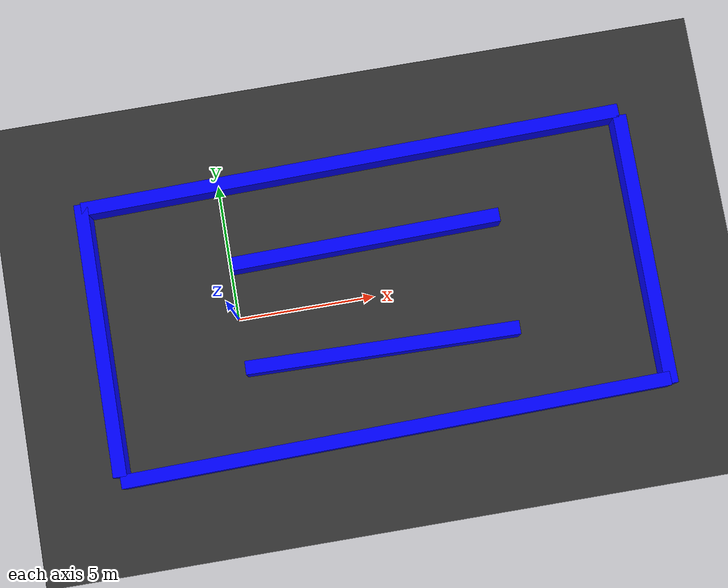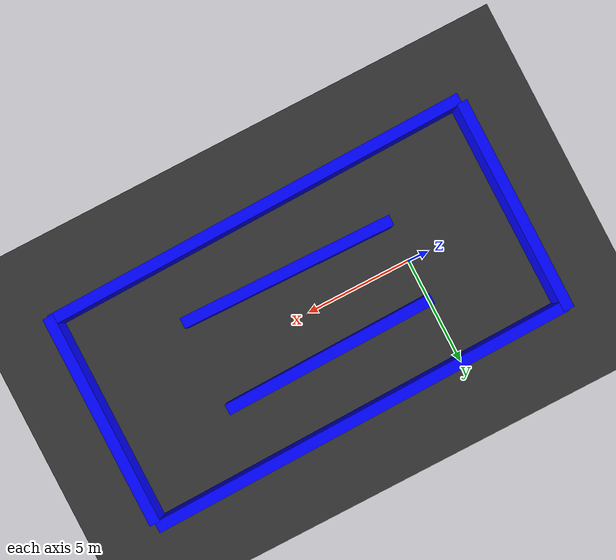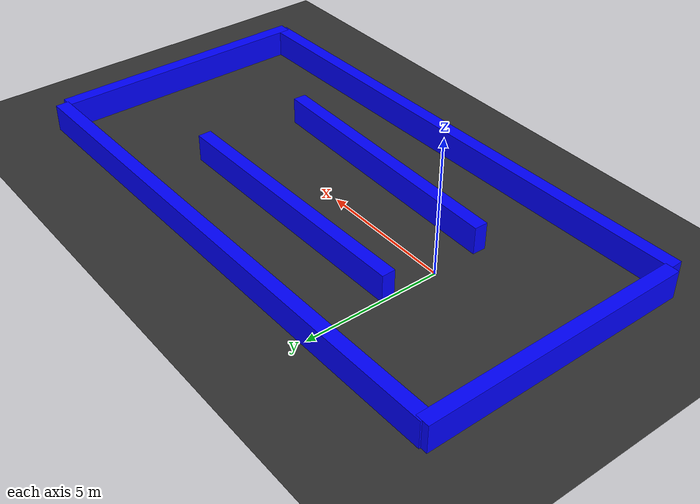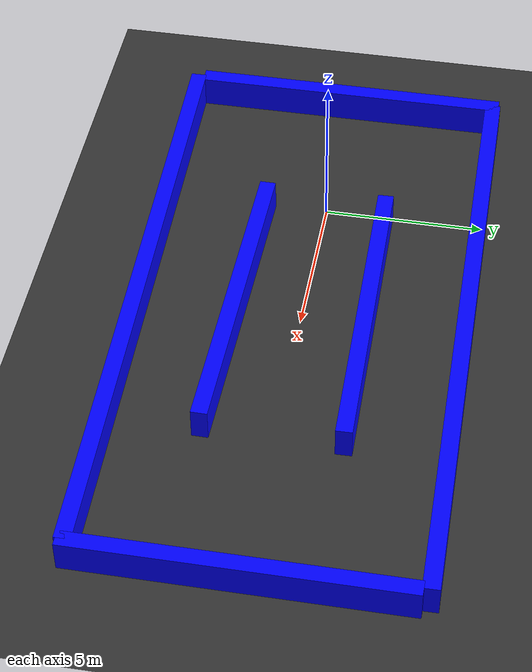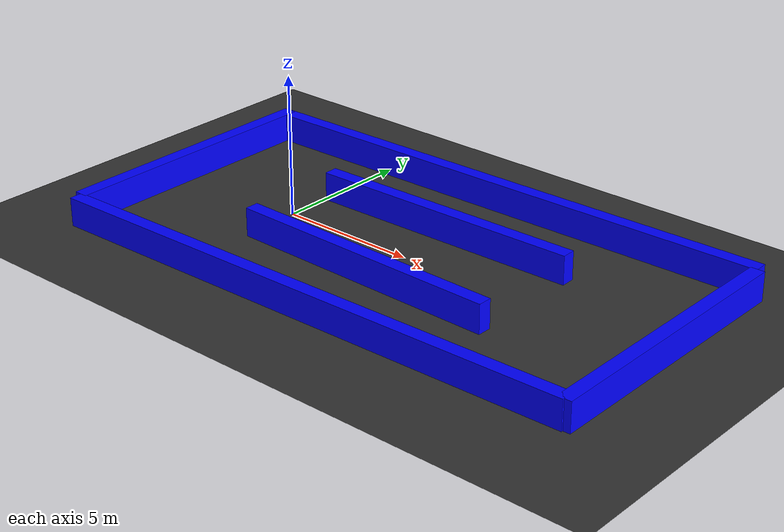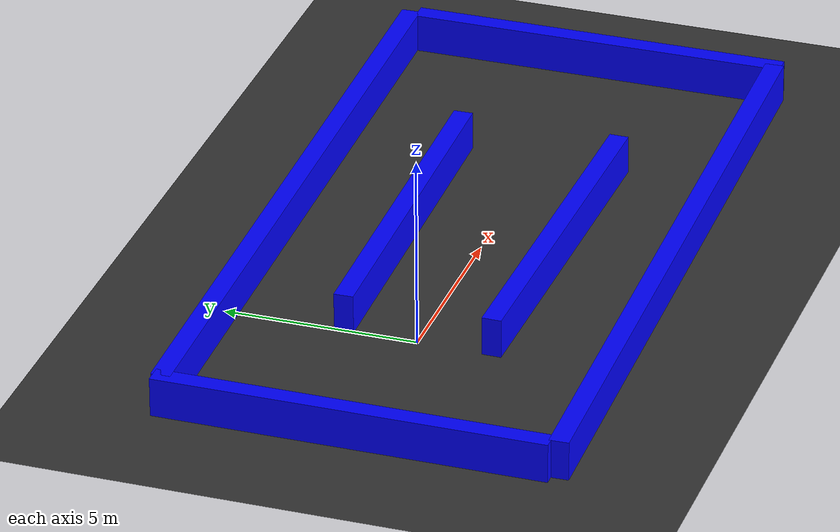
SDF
<sdf version="1.8">
 <world name="test_world">
  <plugin filename="ignition-gazebo-physics-system" name="gz::sim::systems::Physics"/>
  <plugin filename="ignition-gazebo-sensors-system" name="gz::sim::systems::Sensors">
   <render_engine>ogre2</render_engine>
  </plugin>
  <plugin filename="ignition-gazebo-user-commands-system" name="gz::sim::systems::UserCommands"/>
  <plugin filename="ignition-gazebo-scene-broadcaster-system" name="gz::sim::systems::SceneBroadcaster"/>
  <include><uri>https://fuel.gazebosim.org/1.0/OpenRobotics/models/Sun</uri></include>
  <model name="ground_plane">
   <static>true</static>
   <link name="link">
    <collision name="collision">
     <geometry><plane><normal>0 0 1</normal><size>200 200</size></plane></geometry>
    </collision>
    <visual name="visual">
     <geometry><plane><normal>0 0 1</normal><size>200 200</size></plane></geometry>
     <material>
      <ambient>0.20 0.20 0.20 1</ambient>
      <diffuse>0.20 0.20 0.20 1</diffuse>
      <specular>0.20 0.20 0.20 1</specular>
     </material>
    </visual>
   </link>
  </model>
  <model name="wall1">
   <static>true</static>
   <pose>5 2 0 0 0 1.59</pose>
   <link name="box">
    <visual name="visual">
     <geometry><box><size>0.5 10.0 2.0</size></box></geometry>
     <material>
      <ambient>0.0 0.0 1.0 1</ambient>
      <diffuse>0.0 0.0 1.0 1</diffuse>
      <specular>0.0 0.0 1.0 1</specular>
     </material>
    </visual>
    <collision name="collision"><geometry><box><size>0.5 10.0 2.0</size></box></geometry></collision>
   </link>
  </model>
  <model name="wall2">
   <static>true</static>
   <pose>5 -2 0 0 0 -1.59</pose>
   <link name="box">
    <visual name="visual">
     <geometry><box><size>0.5 10.0 2.0</size></box></geometry>
     <material>
      <ambient>0.0 0.0 1.0 1</ambient>
      <diffuse>0.0 0.0 1.0 1</diffuse>
      <specular>0.0 0.0 1.0 1</specular>
     </material>
    </visual>
    <collision name="collision"><geometry><box><size>0.5 10.0 2.0</size></box></geometry></collision>
   </link>
  </model>
  <model name="wall3">
   <static>true</static>
   <pose>15 0 0 0 0 0</pose>
   <link name="box">
    <visual name="visual">
     <geometry><box><size>0.5 10.0 2.0</size></box></geometry>
     <material>
      <ambient>0.0 0.0 1.0 1</ambient>
      <diffuse>0.0 0.0 1.0 1</diffuse>
      <specular>0.0 0.0 1.0 1</specular>
     </material>
    </visual>
    <collision name="collision"><geometry><box><size>0.3 10.0 2.0</size></box></geometry></collision>
   </link>
  </model>
  <model name="wall4">
   <static>true</static>
   <pose>-5 0 0 0 0 0</pose>
   <link name="box">
    <visual name="visual">
     <geometry><box><size>0.5 10.0 2.0</size></box></geometry>
     <material>
      <ambient>0.0 0.0 1.0 1</ambient>
      <diffuse>0.0 0.0 1.0 1</diffuse>
      <specular>0.0 0.0 1.0 1</specular>
     </material>
    </visual>
    <collision name="collision"><geometry><box><size>0.3 10.0 2.0</size></box></geometry></collision>
   </link>
  </model>
  <model name="wall5">
   <static>true</static>
   <pose>5 5 0 0 0 1.59</pose>
   <link name="box">
    <visual name="visual">
     <geometry><box><size>0.5 20.0 2.0</size></box></geometry>
     <material>
      <ambient>0.0 0.0 1.0 1</ambient>
      <diffuse>0.0 0.0 1.0 1</diffuse>
      <specular>0.0 0.0 1.0 1</specular>
     </material>
    </visual>
    <collision name="collision"><geometry><box><size>0.5 20.0 2.0</size></box></geometry></collision>
   </link>
  </model>
  <model name="wall6">
   <static>true</static>
   <pose>5 -5 0 0 0 1.59</pose>
   <link name="box">
    <visual name="visual">
     <geometry><box><size>0.5 20.0 2.0</size></box></geometry>
     <material>
      <ambient>0.0 0.0 1.0 1</ambient>
      <diffuse>0.0 0.0 1.0 1</diffuse>
      <specular>0.0 0.0 1.0 1</specular>
     </material>
    </visual>
    <collision name="collision"><geometry><box><size>0.5 20.0 2.0</size></box></geometry></collision>
   </link>
  </model>
 </world>
</sdf>
